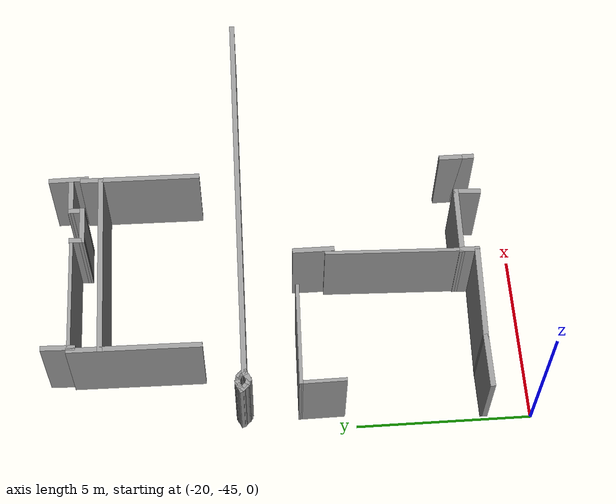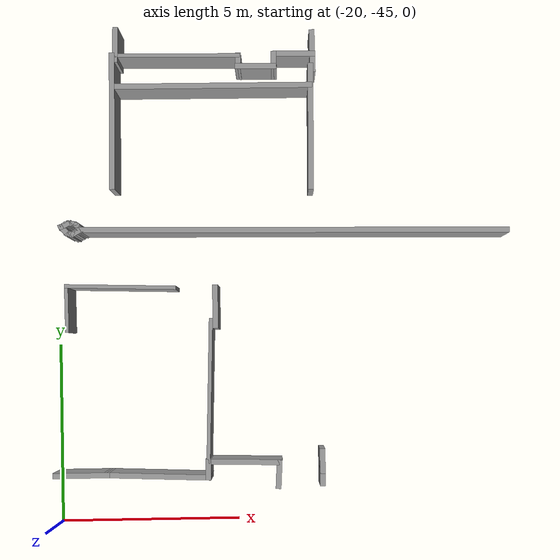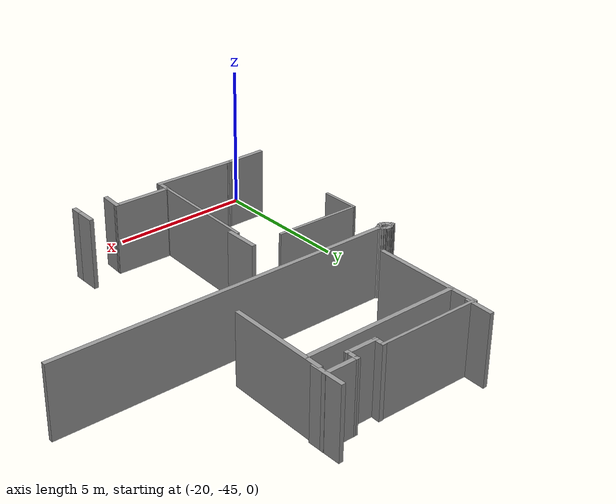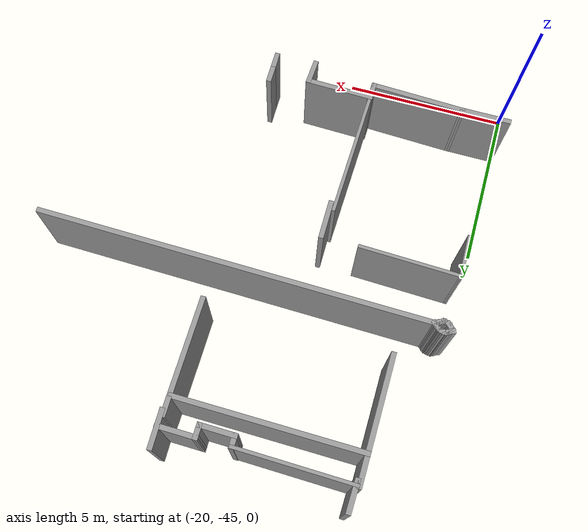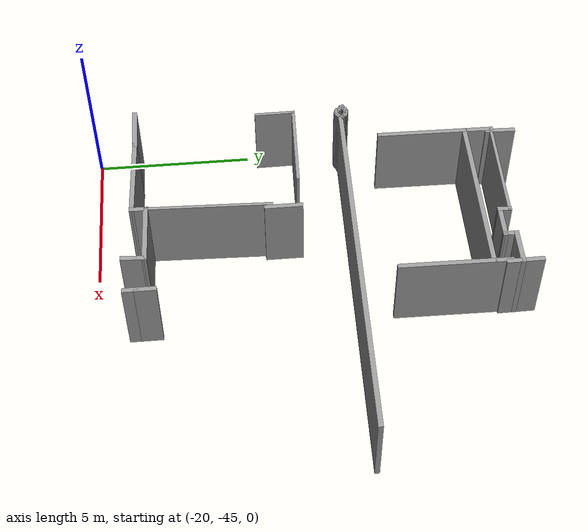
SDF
<sdf version="1.4">
 <model name="3_n">
  <pose>-14.229 -33.4428 0 0 -0 0</pose>
  <link name="Wall_312">
   <collision name="Wall_312_Collision">
    <geometry><box><size>1.32207 0.1 2.5</size></box></geometry>
    <pose>0 0 1.25 0 -0 0</pose>
   </collision>
   <visual name="Wall_312_Visual">
    <pose>0 0 1.25 0 -0 0</pose>
    <geometry><box><size>1.32207 0.1 2.5</size></box></geometry>
    <material>
     <script><uri>file://media/materials/scripts/gazebo.material</uri><name>Gazebo/Grey</name></script>
     <ambient>1 1 1 1</ambient>
    </material>
    <meta><layer>0</layer></meta>
   </visual>
   <pose>-5.37353 -5.57925 0 0 -0 1.58143</pose>
  </link>
  <link name="Wall_313">
   <collision name="Wall_313_Collision">
    <geometry><box><size>3.0658 0.1 2.5</size></box></geometry>
    <pose>0 0 1.25 0 -0 0</pose>
   </collision>
   <visual name="Wall_313_Visual">
    <pose>0 0 1.25 0 -0 0</pose>
    <geometry><box><size>3.0658 0.1 2.5</size></box></geometry>
    <material>
     <script><uri>file://media/materials/scripts/gazebo.material</uri><name>Gazebo/Grey</name></script>
     <ambient>1 1 1 1</ambient>
    </material>
    <meta><layer>0</layer></meta>
   </visual>
   <pose>-3.89753 -5.01374 0 0 -0 -0.030678</pose>
  </link>
  <link name="Wall_315">
   <collision name="Wall_315_Collision">
    <geometry><box><size>1.20318 0.15 2.5</size></box></geometry>
    <pose>0 0 1.25 0 -0 0</pose>
   </collision>
   <visual name="Wall_315_Visual">
    <pose>0 0 1.25 0 -0 0</pose>
    <geometry><box><size>1.20318 0.15 2.5</size></box></geometry>
    <material>
     <script><uri>file://media/materials/scripts/gazebo.material</uri><name>Gazebo/Grey</name></script>
     <ambient>1 1 1 1</ambient>
    </material>
    <meta><layer>0</layer></meta>
   </visual>
   <pose>-1.28405 -5.5984 0 0 -0 -1.5708</pose>
  </link>
  <link name="Wall_317">
   <collision name="Wall_317_Collision">
    <geometry><box><size>3.98436 0.1 2.5</size></box></geometry>
    <pose>0 0 1.25 0 -0 0</pose>
   </collision>
   <visual name="Wall_317_Visual">
    <pose>0 0 1.25 0 -0 0</pose>
    <geometry><box><size>3.98436 0.1 2.5</size></box></geometry>
    <material>
     <script><uri>file://media/materials/scripts/gazebo.material</uri><name>Gazebo/Grey</name></script>
     <ambient>1 1 1 1</ambient>
    </material>
    <meta><layer>0</layer></meta>
   </visual>
   <pose>-1.47753 -7.91025 0 0 -0 1.53809</pose>
  </link>
  <link name="Wall_320">
   <collision name="Wall_320_Collision">
    <geometry><box><size>0.683092 0.15 2.5</size></box></geometry>
    <pose>0 0 1.25 0 -0 0</pose>
   </collision>
   <visual name="Wall_320_Visual">
    <pose>0 0 1.25 0 -0 0</pose>
    <geometry><box><size>0.683092 0.15 2.5</size></box></geometry>
    <material>
     <script><uri>file://media/materials/scripts/gazebo.material</uri><name>Gazebo/Grey</name></script>
     <ambient>1 1 1 1</ambient>
    </material>
    <meta><layer>0</layer></meta>
   </visual>
   <pose>1.58944 -9.88914 0 0 -0 1.5708</pose>
  </link>
  <link name="Wall_352">
   <collision name="Wall_352_Collision">
    <geometry><box><size>0.234107 0.15 2.5</size></box></geometry>
    <pose>0 0 1.25 0 -0 0</pose>
   </collision>
   <visual name="Wall_352_Visual">
    <pose>0 0 1.25 0 -0 0</pose>
    <geometry><box><size>0.234107 0.15 2.5</size></box></geometry>
    <material>
     <script><uri>file://media/materials/scripts/gazebo.material</uri><name>Gazebo/Grey</name></script>
     <ambient>1 1 1 1</ambient>
    </material>
    <meta><layer>0</layer></meta>
   </visual>
   <pose>-5.42328 -3.41662 0 0 -0 -0.785398</pose>
  </link>
  <link name="Wall_353">
   <collision name="Wall_353_Collision">
    <geometry><box><size>0.234107 0.15 2.5</size></box></geometry>
    <pose>0 0 1.25 0 -0 0</pose>
   </collision>
   <visual name="Wall_353_Visual">
    <pose>0 0 1.25 0 -0 0</pose>
    <geometry><box><size>0.234107 0.15 2.5</size></box></geometry>
    <material>
     <script><uri>file://media/materials/scripts/gazebo.material</uri><name>Gazebo/Grey</name></script>
     <ambient>1 1 1 1</ambient>
    </material>
    <meta><layer>0</layer></meta>
   </visual>
   <pose>-5.36381 -3.4761 0 0 -0 -0.785398</pose>
  </link>
  <link name="Wall_354">
   <collision name="Wall_354_Collision">
    <geometry><box><size>0.220526 0.15 2.5</size></box></geometry>
    <pose>0 0 1.25 0 -0 0</pose>
   </collision>
   <visual name="Wall_354_Visual">
    <pose>0 0 1.25 0 -0 0</pose>
    <geometry><box><size>0.220526 0.15 2.5</size></box></geometry>
    <material>
     <script><uri>file://media/materials/scripts/gazebo.material</uri><name>Gazebo/Grey</name></script>
     <ambient>1 1 1 1</ambient>
    </material>
    <meta><layer>0</layer></meta>
   </visual>
   <pose>-5.30062 -3.51699 0 0 -0 -0.321751</pose>
  </link>
  <link name="Wall_355">
   <collision name="Wall_355_Collision">
    <geometry><box><size>0.218539 0.15 2.5</size></box></geometry>
    <pose>0 0 1.25 0 -0 0</pose>
   </collision>
   <visual name="Wall_355_Visual">
    <pose>0 0 1.25 0 -0 0</pose>
    <geometry><box><size>0.218539 0.15 2.5</size></box></geometry>
    <material>
     <script><uri>file://media/materials/scripts/gazebo.material</uri><name>Gazebo/Grey</name></script>
     <ambient>1 1 1 1</ambient>
    </material>
    <meta><layer>0</layer></meta>
   </visual>
   <pose>-5.23371 -3.53557 0 0 -0 -0.218669</pose>
  </link>
  <link name="Wall_356">
   <collision name="Wall_356_Collision">
    <geometry><box><size>0.230067 0.15 2.5</size></box></geometry>
    <pose>0 0 1.25 0 -0 0</pose>
   </collision>
   <visual name="Wall_356_Visual">
    <pose>0 0 1.25 0 -0 0</pose>
    <geometry><box><size>0.230067 0.15 2.5</size></box></geometry>
    <material>
     <script><uri>file://media/materials/scripts/gazebo.material</uri><name>Gazebo/Grey</name></script>
     <ambient>1 1 1 1</ambient>
    </material>
    <meta><layer>0</layer></meta>
   </visual>
   <pose>-5.16309 -3.52814 0 0 -0 0.380506</pose>
  </link>
  <link name="Wall_357">
   <collision name="Wall_357_Collision">
    <geometry><box><size>0.253277 0.15 2.5</size></box></geometry>
    <pose>0 0 1.25 0 -0 0</pose>
   </collision>
   <visual name="Wall_357_Visual">
    <pose>0 0 1.25 0 -0 0</pose>
    <geometry><box><size>0.253277 0.15 2.5</size></box></geometry>
    <material>
     <script><uri>file://media/materials/scripts/gazebo.material</uri><name>Gazebo/Grey</name></script>
     <ambient>1 1 1 1</ambient>
    </material>
    <meta><layer>0</layer></meta>
   </visual>
   <pose>-5.08131 -3.48725 0 0 -0 0.528074</pose>
  </link>
  <link name="Wall_358">
   <collision name="Wall_358_Collision">
    <geometry><box><size>0.213517 0.15 2.5</size></box></geometry>
    <pose>0 0 1.25 0 -0 0</pose>
   </collision>
   <visual name="Wall_358_Visual">
    <pose>0 0 1.25 0 -0 0</pose>
    <geometry><box><size>0.213517 0.15 2.5</size></box></geometry>
    <material>
     <script><uri>file://media/materials/scripts/gazebo.material</uri><name>Gazebo/Grey</name></script>
     <ambient>1 1 1 1</ambient>
    </material>
    <meta><layer>0</layer></meta>
   </visual>
   <pose>-5.00697 -3.45008 0 0 -0 0.358771</pose>
  </link>
  <link name="Wall_361">
   <collision name="Wall_361_Collision">
    <geometry><box><size>0.210542 0.15 2.5</size></box></geometry>
    <pose>0 0 1.25 0 -0 0</pose>
   </collision>
   <visual name="Wall_361_Visual">
    <pose>0 0 1.25 0 -0 0</pose>
    <geometry><box><size>0.210542 0.15 2.5</size></box></geometry>
    <material>
     <script><uri>file://media/materials/scripts/gazebo.material</uri><name>Gazebo/Grey</name></script>
     <ambient>1 1 1 1</ambient>
    </material>
    <meta><layer>0</layer></meta>
   </visual>
   <pose>-5.4685 -3.32291 0 0 -0 0.380506</pose>
  </link>
  <link name="Wall_362">
   <collision name="Wall_362_Collision">
    <geometry><box><size>0.220434 0.15 2.5</size></box></geometry>
    <pose>0 0 1.25 0 -0 0</pose>
   </collision>
   <visual name="Wall_362_Visual">
    <pose>0 0 1.25 0 -0 0</pose>
    <geometry><box><size>0.220434 0.15 2.5</size></box></geometry>
    <material>
     <script><uri>file://media/materials/scripts/gazebo.material</uri><name>Gazebo/Grey</name></script>
     <ambient>1 1 1 1</ambient>
    </material>
    <meta><layer>0</layer></meta>
   </visual>
   <pose>-5.40947 -3.29481 0 0 -0 0.499347</pose>
  </link>
  <link name="Wall_363">
   <collision name="Wall_363_Collision">
    <geometry><box><size>0.200278 0.15 2.5</size></box></geometry>
    <pose>0 0 1.25 0 -0 0</pose>
   </collision>
   <visual name="Wall_363_Visual">
    <pose>0 0 1.25 0 -0 0</pose>
    <geometry><box><size>0.200278 0.15 2.5</size></box></geometry>
    <material>
     <script><uri>file://media/materials/scripts/gazebo.material</uri><name>Gazebo/Grey</name></script>
     <ambient>1 1 1 1</ambient>
    </material>
    <meta><layer>0</layer></meta>
   </visual>
   <pose>-5.35607 -3.2667 0 0 -0 0.463648</pose>
  </link>
  <link name="Wall_364">
   <collision name="Wall_364_Collision">
    <geometry><box><size>0.207325 0.15 2.5</size></box></geometry>
    <pose>0 0 1.25 0 -0 0</pose>
   </collision>
   <visual name="Wall_364_Visual">
    <pose>0 0 1.25 0 -0 0</pose>
    <geometry><box><size>0.207325 0.15 2.5</size></box></geometry>
    <material>
     <script><uri>file://media/materials/scripts/gazebo.material</uri><name>Gazebo/Grey</name></script>
     <ambient>1 1 1 1</ambient>
    </material>
    <meta><layer>0</layer></meta>
   </visual>
   <pose>-5.30548 -3.24984 0 0 -0 0.197396</pose>
  </link>
  <link name="Wall_365">
   <collision name="Wall_365_Collision">
    <geometry><box><size>0.234506 0.15 2.5</size></box></geometry>
    <pose>0 0 1.25 0 -0 0</pose>
   </collision>
   <visual name="Wall_365_Visual">
    <pose>0 0 1.25 0 -0 0</pose>
    <geometry><box><size>0.234506 0.15 2.5</size></box></geometry>
    <material>
     <script><uri>file://media/materials/scripts/gazebo.material</uri><name>Gazebo/Grey</name></script>
     <ambient>1 1 1 1</ambient>
    </material>
    <meta><layer>0</layer></meta>
   </visual>
   <pose>-5.23522 -3.24984 0 0 -0 -0.132552</pose>
  </link>
  <link name="Wall_366">
   <collision name="Wall_366_Collision">
    <geometry><box><size>0.221104 0.15 2.5</size></box></geometry>
    <pose>0 0 1.25 0 -0 0</pose>
   </collision>
   <visual name="Wall_366_Visual">
    <pose>0 0 1.25 0 -0 0</pose>
    <geometry><box><size>0.221104 0.15 2.5</size></box></geometry>
    <material>
     <script><uri>file://media/materials/scripts/gazebo.material</uri><name>Gazebo/Grey</name></script>
     <ambient>1 1 1 1</ambient>
    </material>
    <meta><layer>0</layer></meta>
   </visual>
   <pose>-5.15933 -3.2667 0 0 -0 -0.321751</pose>
  </link>
  <link name="Wall_367">
   <collision name="Wall_367_Collision">
    <geometry><box><size>0.200278 0.15 2.5</size></box></geometry>
    <pose>0 0 1.25 0 -0 0</pose>
   </collision>
   <visual name="Wall_367_Visual">
    <pose>0 0 1.25 0 -0 0</pose>
    <geometry><box><size>0.200278 0.15 2.5</size></box></geometry>
    <material>
     <script><uri>file://media/materials/scripts/gazebo.material</uri><name>Gazebo/Grey</name></script>
     <ambient>1 1 1 1</ambient>
    </material>
    <meta><layer>0</layer></meta>
   </visual>
   <pose>-5.10312 -3.28919 0 0 -0 -0.463648</pose>
  </link>
  <link name="Wall_368">
   <collision name="Wall_368_Collision">
    <geometry><box><size>0.209754 0.15 2.5</size></box></geometry>
    <pose>0 0 1.25 0 -0 0</pose>
   </collision>
   <visual name="Wall_368_Visual">
    <pose>0 0 1.25 0 -0 0</pose>
    <geometry><box><size>0.209754 0.15 2.5</size></box></geometry>
    <material>
     <script><uri>file://media/materials/scripts/gazebo.material</uri><name>Gazebo/Grey</name></script>
     <ambient>1 1 1 1</ambient>
    </material>
    <meta><layer>0</layer></meta>
   </visual>
   <pose>-5.06096 -3.32291 0 0 -0 -0.851966</pose>
  </link>
  <link name="Wall_369">
   <collision name="Wall_369_Collision">
    <geometry><box><size>0.206212 0.15 2.5</size></box></geometry>
    <pose>0 0 1.25 0 -0 0</pose>
   </collision>
   <visual name="Wall_369_Visual">
    <pose>0 0 1.25 0 -0 0</pose>
    <geometry><box><size>0.206212 0.15 2.5</size></box></geometry>
    <material>
     <script><uri>file://media/materials/scripts/gazebo.material</uri><name>Gazebo/Grey</name></script>
     <ambient>1 1 1 1</ambient>
    </material>
    <meta><layer>0</layer></meta>
   </visual>
   <pose>-5.0188 -3.36226 0 0 -0 -0.643501</pose>
  </link>
  <link name="Wall_370">
   <collision name="Wall_370_Collision">
    <geometry><box><size>0.221547 0.15 2.5</size></box></geometry>
    <pose>0 0 1.25 0 -0 0</pose>
   </collision>
   <visual name="Wall_370_Visual">
    <pose>0 0 1.25 0 -0 0</pose>
    <geometry><box><size>0.221547 0.15 2.5</size></box></geometry>
    <material>
     <script><uri>file://media/materials/scripts/gazebo.material</uri><name>Gazebo/Grey</name></script>
     <ambient>1 1 1 1</ambient>
    </material>
    <meta><layer>0</layer></meta>
   </visual>
   <pose>-4.97102 -3.40442 0 0 -0 -0.785398</pose>
  </link>
  <link name="Wall_371">
   <collision name="Wall_371_Collision">
    <geometry><box><size>11.8742 0.15 2.5</size></box></geometry>
    <pose>0 0 1.25 0 -0 0</pose>
   </collision>
   <visual name="Wall_371_Visual">
    <pose>0 0 1.25 0 -0 0</pose>
    <geometry><box><size>11.8742 0.15 2.5</size></box></geometry>
    <material>
     <script><uri>file://media/materials/scripts/gazebo.material</uri><name>Gazebo/Grey</name></script>
     <ambient>1 1 1 1</ambient>
    </material>
    <meta><layer>0</layer></meta>
   </visual>
   <pose>0.915671 -3.52447 0 0 -0 -0.016163</pose>
  </link>
  <link name="Wall_429">
   <collision name="Wall_429_Collision">
    <geometry><box><size>1.16813 0.15 2.5</size></box></geometry>
    <pose>0 0 1.25 0 -0 0</pose>
   </collision>
   <visual name="Wall_429_Visual">
    <pose>0 0 1.25 0 -0 0</pose>
    <geometry><box><size>1.16813 0.15 2.5</size></box></geometry>
    <material>
     <script><uri>file://media/materials/scripts/gazebo.material</uri><name>Gazebo/Grey</name></script>
     <ambient>1 1 1 1</ambient>
    </material>
    <meta><layer>0</layer></meta>
   </visual>
   <pose>1.50568 1.41839 0 0 -0 -1.55969</pose>
  </link>
  <link name="Wall_433">
   <collision name="Wall_433_Collision">
    <geometry><box><size>0.444181 0.15 2.5</size></box></geometry>
    <pose>0 0 1.25 0 -0 0</pose>
   </collision>
   <visual name="Wall_433_Visual">
    <pose>0 0 1.25 0 -0 0</pose>
    <geometry><box><size>0.444181 0.15 2.5</size></box></geometry>
    <material>
     <script><uri>file://media/materials/scripts/gazebo.material</uri><name>Gazebo/Grey</name></script>
     <ambient>1 1 1 1</ambient>
    </material>
    <meta><layer>0</layer></meta>
   </visual>
   <pose>-0.551872 1.16971 0 0 -0 -1.61052</pose>
  </link>
  <link name="Wall_434">
   <collision name="Wall_434_Collision">
    <geometry><box><size>1.14553 0.15 2.5</size></box></geometry>
    <pose>0 0 1.25 0 -0 0</pose>
   </collision>
   <visual name="Wall_434_Visual">
    <pose>0 0 1.25 0 -0 0</pose>
    <geometry><box><size>1.14553 0.15 2.5</size></box></geometry>
    <material>
     <script><uri>file://media/materials/scripts/gazebo.material</uri><name>Gazebo/Grey</name></script>
     <ambient>1 1 1 1</ambient>
    </material>
    <meta><layer>0</layer></meta>
   </visual>
   <pose>-0.060238 1.01701 0 0 -0 -0.011363</pose>
  </link>
  <link name="Wall_435">
   <collision name="Wall_435_Collision">
    <geometry><box><size>0.489189 0.15 2.5</size></box></geometry>
    <pose>0 0 1.25 0 -0 0</pose>
   </collision>
   <visual name="Wall_435_Visual">
    <pose>0 0 1.25 0 -0 0</pose>
    <geometry><box><size>0.489189 0.15 2.5</size></box></geometry>
    <material>
     <script><uri>file://media/materials/scripts/gazebo.material</uri><name>Gazebo/Grey</name></script>
     <ambient>1 1 1 1</ambient>
    </material>
    <meta><layer>0</layer></meta>
   </visual>
   <pose>0.437238 1.18095 0 0 -0 1.5708</pose>
  </link>
  <link name="Wall_436">
   <collision name="Wall_436_Collision">
    <geometry><box><size>1.22434 0.15 2.5</size></box></geometry>
    <pose>0 0 1.25 0 -0 0</pose>
   </collision>
   <visual name="Wall_436_Visual">
    <pose>0 0 1.25 0 -0 0</pose>
    <geometry><box><size>1.22434 0.15 2.5</size></box></geometry>
    <material>
     <script><uri>file://media/materials/scripts/gazebo.material</uri><name>Gazebo/Grey</name></script>
     <ambient>1 1 1 1</ambient>
    </material>
    <meta><layer>0</layer></meta>
   </visual>
   <pose>0.974288 1.34489 0 0 -0 -0.010526</pose>
  </link>
  <link name="Wall_438">
   <collision name="Wall_438_Collision">
    <geometry><box><size>3.5459 0.1 2.5</size></box></geometry>
    <pose>0 0 1.25 0 -0 0</pose>
   </collision>
   <visual name="Wall_438_Visual">
    <pose>0 0 1.25 0 -0 0</pose>
    <geometry><box><size>3.5459 0.1 2.5</size></box></geometry>
    <material>
     <script><uri>file://media/materials/scripts/gazebo.material</uri><name>Gazebo/Grey</name></script>
     <ambient>1 1 1 1</ambient>
    </material>
    <meta><layer>0</layer></meta>
   </visual>
   <pose>-2.26303 1.35075 0 0 -0 -0.015089</pose>
  </link>
  <link name="Wall_440">
   <collision name="Wall_440_Collision">
    <geometry><box><size>0.971387 0.15 2.5</size></box></geometry>
    <pose>0 0 1.25 0 -0 0</pose>
   </collision>
   <visual name="Wall_440_Visual">
    <pose>0 0 1.25 0 -0 0</pose>
    <geometry><box><size>0.971387 0.15 2.5</size></box></geometry>
    <material>
     <script><uri>file://media/materials/scripts/gazebo.material</uri><name>Gazebo/Grey</name></script>
     <ambient>1 1 1 1</ambient>
    </material>
    <meta><layer>0</layer></meta>
   </visual>
   <pose>-3.93434 1.67058 0 0 -0 -1.60228</pose>
  </link>
  <link name="Wall_467">
   <collision name="Wall_467_Collision">
    <geometry><box><size>3.78376 0.15 2.5</size></box></geometry>
    <pose>0 0 1.25 0 -0 0</pose>
   </collision>
   <visual name="Wall_467_Visual">
    <pose>0 0 1.25 0 -0 0</pose>
    <geometry><box><size>3.78376 0.15 2.5</size></box></geometry>
    <material>
     <script><uri>file://media/materials/scripts/gazebo.material</uri><name>Gazebo/Grey</name></script>
     <ambient>1 1 1 1</ambient>
    </material>
    <meta><layer>0</layer></meta>
   </visual>
   <pose>-4.05157 -0.433204 0 0 -0 1.55903</pose>
  </link>
  <link name="Wall_469">
   <collision name="Wall_469_Collision">
    <geometry><box><size>3.5046 0.15 2.5</size></box></geometry>
    <pose>0 0 1.25 0 -0 0</pose>
   </collision>
   <visual name="Wall_469_Visual">
    <pose>0 0 1.25 0 -0 0</pose>
    <geometry><box><size>3.5046 0.15 2.5</size></box></geometry>
    <material>
     <script><uri>file://media/materials/scripts/gazebo.material</uri><name>Gazebo/Grey</name></script>
     <ambient>1 1 1 1</ambient>
    </material>
    <meta><layer>0</layer></meta>
   </visual>
   <pose>1.42906 -0.668632 0 0 -0 1.55917</pose>
  </link>
  <link name="Wall_471">
   <collision name="Wall_471_Collision">
    <geometry><box><size>5.59808 0.15 2.5</size></box></geometry>
    <pose>0 0 1.25 0 -0 0</pose>
   </collision>
   <visual name="Wall_471_Visual">
    <pose>0 0 1.25 0 -0 0</pose>
    <geometry><box><size>5.59808 0.15 2.5</size></box></geometry>
    <material>
     <script><uri>file://media/materials/scripts/gazebo.material</uri><name>Gazebo/Grey</name></script>
     <ambient>1 1 1 1</ambient>
    </material>
    <meta><layer>0</layer></meta>
   </visual>
   <pose>-1.31441 0.495069 0 0 -0 -0.00716</pose>
  </link>
  <link name="Wall_59">
   <collision name="Wall_59_Collision">
    <geometry><box><size>1.56916 0.15 2.5</size></box></geometry>
    <pose>0 0 1.25 0 -0 0</pose>
   </collision>
   <visual name="Wall_59_Visual">
    <pose>0 0 1.25 0 -0 0</pose>
    <geometry><box><size>1.56916 0.15 2.5</size></box></geometry>
    <material>
     <script><uri>file://media/materials/scripts/gazebo.material</uri><name>Gazebo/Grey</name></script>
     <ambient>1 1 1 1</ambient>
    </material>
    <meta><layer>0</layer></meta>
   </visual>
   <pose>-5.03737 -10.1761 0 0 -0 0</pose>
  </link>
  <link name="Wall_61">
   <collision name="Wall_61_Collision">
    <geometry><box><size>2.93071 0.15 2.5</size></box></geometry>
    <pose>0 0 1.25 0 -0 0</pose>
   </collision>
   <visual name="Wall_61_Visual">
    <pose>0 0 1.25 0 -0 0</pose>
    <geometry><box><size>2.93071 0.15 2.5</size></box></geometry>
    <material>
     <script><uri>file://media/materials/scripts/gazebo.material</uri><name>Gazebo/Grey</name></script>
     <ambient>1 1 1 1</ambient>
    </material>
    <meta><layer>0</layer></meta>
   </visual>
   <pose>-2.93854 -10.2317 0 0 -0 -0.039979</pose>
  </link>
  <link name="Wall_62">
   <collision name="Wall_62_Collision">
    <geometry><box><size>0.586092 0.15 2.5</size></box></geometry>
    <pose>0 0 1.25 0 -0 0</pose>
   </collision>
   <visual name="Wall_62_Visual">
    <pose>0 0 1.25 0 -0 0</pose>
    <geometry><box><size>0.586092 0.15 2.5</size></box></geometry>
    <material>
     <script><uri>file://media/materials/scripts/gazebo.material</uri><name>Gazebo/Grey</name></script>
     <ambient>1 1 1 1</ambient>
    </material>
    <meta><layer>0</layer></meta>
   </visual>
   <pose>-1.54516 -10.0693 0 0 -0 1.55182</pose>
  </link>
  <link name="Wall_63">
   <collision name="Wall_63_Collision">
    <geometry><box><size>2.10013 0.15 2.5</size></box></geometry>
    <pose>0 0 1.25 0 -0 0</pose>
   </collision>
   <visual name="Wall_63_Visual">
    <pose>0 0 1.25 0 -0 0</pose>
    <geometry><box><size>2.10013 0.15 2.5</size></box></geometry>
    <material>
     <script><uri>file://media/materials/scripts/gazebo.material</uri><name>Gazebo/Grey</name></script>
     <ambient>1 1 1 1</ambient>
    </material>
    <meta><layer>0</layer></meta>
   </visual>
   <pose>-0.566283 -9.87691 0 0 -0 -0.02632</pose>
  </link>
  <link name="Wall_64">
   <collision name="Wall_64_Collision">
    <geometry><box><size>0.793172 0.15 2.5</size></box></geometry>
    <pose>0 0 1.25 0 -0 0</pose>
   </collision>
   <visual name="Wall_64_Visual">
    <pose>0 0 1.25 0 -0 0</pose>
    <geometry><box><size>0.793172 0.15 2.5</size></box></geometry>
    <material>
     <script><uri>file://media/materials/scripts/gazebo.material</uri><name>Gazebo/Grey</name></script>
     <ambient>1 1 1 1</ambient>
    </material>
    <meta><layer>0</layer></meta>
   </visual>
   <pose>0.389843 -10.2322 0 0 -0 -1.62872</pose>
  </link>
  <link name="Wall_666">
   <collision name="Wall_666_Collision">
    <geometry><box><size>0.5 0.15 2.5</size></box></geometry>
    <pose>0 0 1.25 0 -0 0</pose>
   </collision>
   <visual name="Wall_666_Visual">
    <pose>0 0 1.25 0 -0 0</pose>
    <geometry><box><size>0.5 0.15 2.5</size></box></geometry>
    <material>
     <script><uri>file://media/materials/scripts/gazebo.material</uri><name>Gazebo/Grey</name></script>
     <ambient>1 1 1 1</ambient>
    </material>
    <meta><layer>0</layer></meta>
   </visual>
   <pose>1.58944 -10.3307 0 0 -0 -1.5708</pose>
  </link>
  <static>1</static>
 </model>
</sdf>
